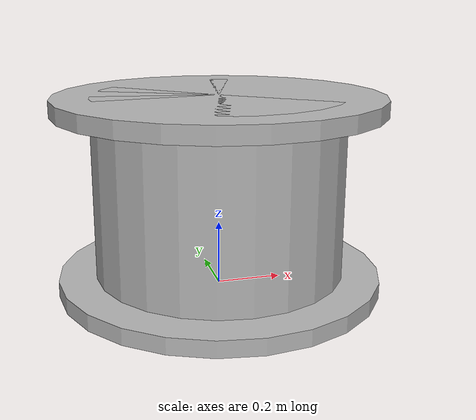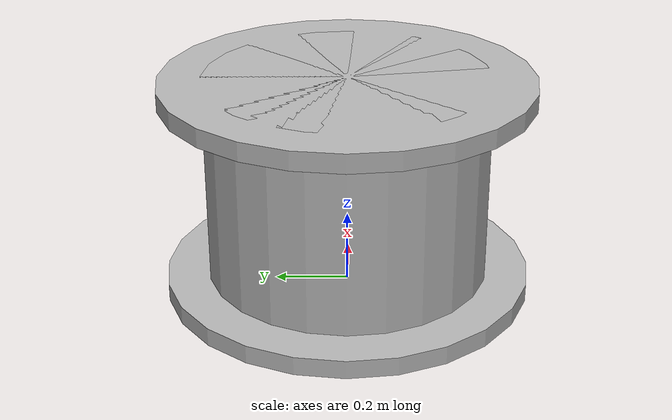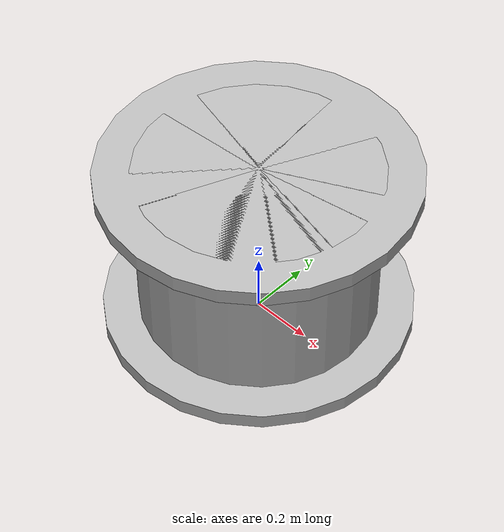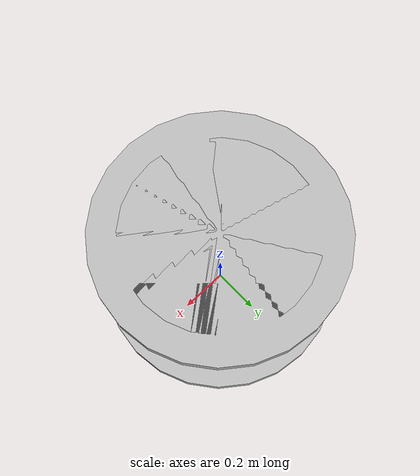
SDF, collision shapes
<?xml version="1.0" ?>
<sdf version="1.6">
  <model name="Cable_Spool">
    <link name="base_link">
      <visual name="base_visual">
        <geometry>
          <mesh>
            <uri>base_visual.glb</uri>
          </mesh>
        </geometry>
      </visual>
      <collision name="spool_cable_low_collider_cylinder">
        <pose>0.0 0.0 0.025 -0.0 0.0 0.0</pose>
        <geometry>
          <cylinder>
            <radius>0.5</radius>
            <length>0.05</length>
          </cylinder>
        </geometry>
      </collision>
      <collision name="spool_cable_low_collider_cylinder.001">
        <pose>0.0 0.0 0.575 -0.0 0.0 0.0</pose>
        <geometry>
          <cylinder>
            <radius>0.5</radius>
            <length>0.05</length>
          </cylinder>
        </geometry>
      </collision>
      <collision name="spool_cable_low_collider_cylinder.002">
        <pose>0.0 0.0 0.3 -0.0 0.0 0.0</pose>
        <geometry>
          <cylinder>
            <radius>0.385824</radius>
            <length>0.6</length>
          </cylinder>
        </geometry>
      </collision>
    </link>
  </model>
</sdf>
